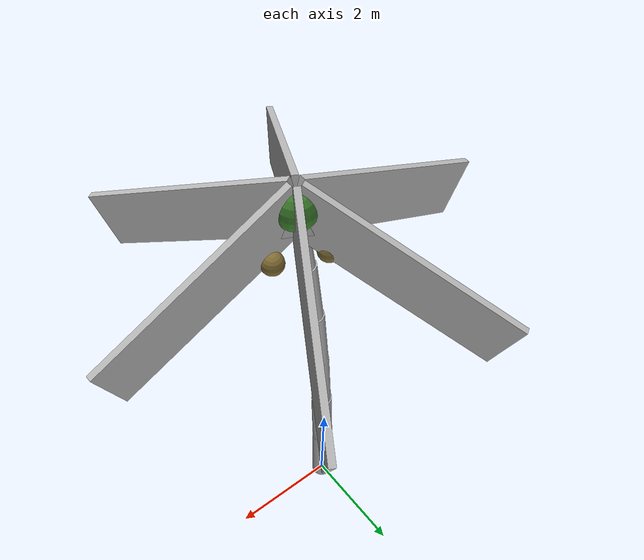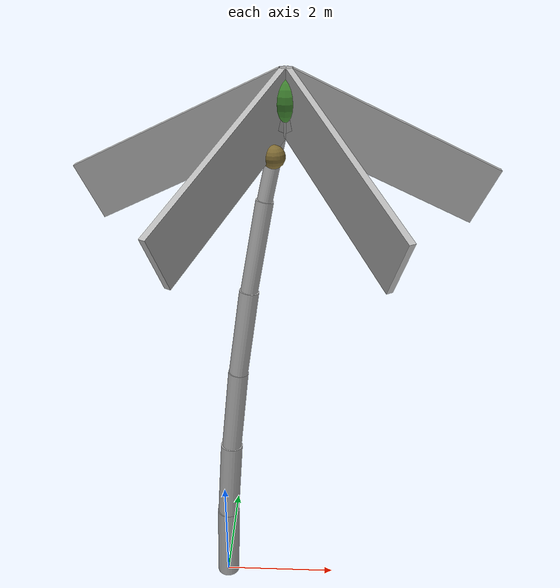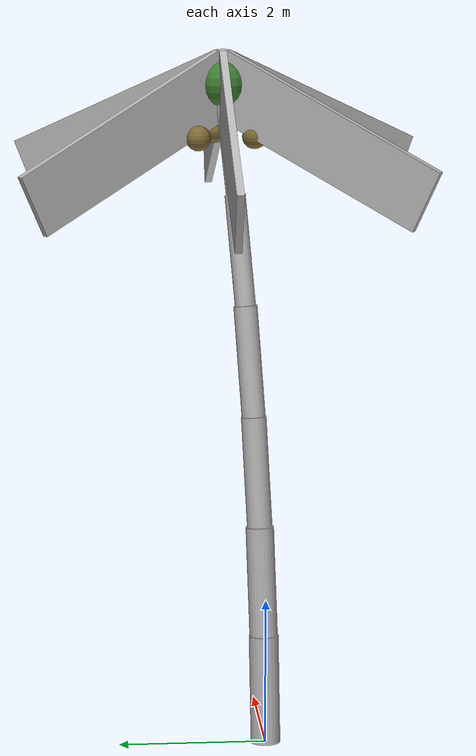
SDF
<?xml version="1.0" ?>
<sdf version="1.9">
  <model name="realistic_tree_coconut">
    <static>true</static>
    <link name="body">

      <!-- ================= BATANG melengkung, 6 segmen cylinder beruntun ================= -->
      <visual name="trunk_seg_1">
        <pose>0.026 0.012 0.749 0 0.038 0.436</pose>
        <geometry><cylinder><radius>0.20</radius><length>1.5</length></cylinder></geometry>
        <material><pbr><metal>
          <albedo_map>model://realistic_tree_coconut/materials/textures/bark_albedo.png</albedo_map>
          <normal_map>model://realistic_tree_coconut/materials/textures/bark_normal.png</normal_map>
          <roughness_map>model://realistic_tree_coconut/materials/textures/bark_roughness.png</roughness_map>
        </metal></pbr></material>
      </visual>
      <visual name="trunk_seg_2">
        <pose>0.104 0.049 2.247 0 0.077 0.436</pose>
        <geometry><cylinder><radius>0.19</radius><length>1.5</length></cylinder></geometry>
        <material><pbr><metal>
          <albedo_map>model://realistic_tree_coconut/materials/textures/bark_albedo.png</albedo_map>
          <normal_map>model://realistic_tree_coconut/materials/textures/bark_normal.png</normal_map>
        </metal></pbr></material>
      </visual>
      <visual name="trunk_seg_3">
        <pose>0.235 0.109 3.740 0 0.115 0.436</pose>
        <geometry><cylinder><radius>0.17</radius><length>1.5</length></cylinder></geometry>
        <material><pbr><metal>
          <albedo_map>model://realistic_tree_coconut/materials/textures/bark_albedo.png</albedo_map>
          <normal_map>model://realistic_tree_coconut/materials/textures/bark_normal.png</normal_map>
        </metal></pbr></material>
      </visual>
      <visual name="trunk_seg_4">
        <pose>0.417 0.194 5.226 0 0.154 0.436</pose>
        <geometry><cylinder><radius>0.16</radius><length>1.5</length></cylinder></geometry>
        <material><pbr><metal>
          <albedo_map>model://realistic_tree_coconut/materials/textures/bark_albedo.png</albedo_map>
          <normal_map>model://realistic_tree_coconut/materials/textures/bark_normal.png</normal_map>
        </metal></pbr></material>
      </visual>
      <visual name="trunk_seg_5">
        <pose>0.650 0.303 6.703 0 0.192 0.436</pose>
        <geometry><cylinder><radius>0.14</radius><length>1.5</length></cylinder></geometry>
        <material><pbr><metal>
          <albedo_map>model://realistic_tree_coconut/materials/textures/bark_albedo.png</albedo_map>
          <normal_map>model://realistic_tree_coconut/materials/textures/bark_normal.png</normal_map>
        </metal></pbr></material>
      </visual>
      <visual name="trunk_seg_6">
        <pose>0.935 0.436 8.170 0 0.230 0.436</pose>
        <geometry><cylinder><radius>0.12</radius><length>1.5</length></cylinder></geometry>
        <material><pbr><metal>
          <albedo_map>model://realistic_tree_coconut/materials/textures/bark_albedo.png</albedo_map>
          <normal_map>model://realistic_tree_coconut/materials/textures/bark_normal.png</normal_map>
        </metal></pbr></material>
      </visual>

      <!-- Pucuk batang -->
      <visual name="crown_bud">
        <pose>1.091 0.509 8.9 0 0 0</pose>
        <geometry><sphere><radius>0.32</radius></sphere></geometry>
        <material><ambient>0.20 0.42 0.16 1</ambient><diffuse>0.24 0.50 0.18 1</diffuse></material>
      </visual>

      <!-- ================= PELEPAH (fronds) — 6 buah menjuntai radial ================= -->
      <visual name="frond_1">
        <pose>2.541 0.509 8.223 0 2.007 0.000</pose>
        <geometry><box><size>0.9 0.10 3.4</size></box></geometry>
        <material><double_sided>true</double_sided><pbr><metal>
          <albedo_map>model://realistic_tree_coconut/materials/textures/leaf_albedo.png</albedo_map>
        </metal></pbr></material>
      </visual>
      <visual name="frond_2">
        <pose>1.816 1.764 8.223 0 2.007 1.047</pose>
        <geometry><box><size>0.9 0.10 3.4</size></box></geometry>
        <material><double_sided>true</double_sided><pbr><metal>
          <albedo_map>model://realistic_tree_coconut/materials/textures/leaf_albedo.png</albedo_map>
        </metal></pbr></material>
      </visual>
      <visual name="frond_3">
        <pose>0.365 1.764 8.223 0 2.007 2.094</pose>
        <geometry><box><size>0.9 0.10 3.4</size></box></geometry>
        <material><double_sided>true</double_sided><pbr><metal>
          <albedo_map>model://realistic_tree_coconut/materials/textures/leaf_albedo.png</albedo_map>
        </metal></pbr></material>
      </visual>
      <visual name="frond_4">
        <pose>-0.360 0.509 8.223 0 2.007 3.142</pose>
        <geometry><box><size>0.9 0.10 3.4</size></box></geometry>
        <material><double_sided>true</double_sided><pbr><metal>
          <albedo_map>model://realistic_tree_coconut/materials/textures/leaf_albedo.png</albedo_map>
        </metal></pbr></material>
      </visual>
      <visual name="frond_5">
        <pose>0.365 -0.747 8.223 0 2.007 4.189</pose>
        <geometry><box><size>0.9 0.10 3.4</size></box></geometry>
        <material><double_sided>true</double_sided><pbr><metal>
          <albedo_map>model://realistic_tree_coconut/materials/textures/leaf_albedo.png</albedo_map>
        </metal></pbr></material>
      </visual>
      <visual name="frond_6">
        <pose>1.816 -0.747 8.223 0 2.007 5.236</pose>
        <geometry><box><size>0.9 0.10 3.4</size></box></geometry>
        <material><double_sided>true</double_sided><pbr><metal>
          <albedo_map>model://realistic_tree_coconut/materials/textures/leaf_albedo.png</albedo_map>
        </metal></pbr></material>
      </visual>

      <!-- Tandan buah kelapa (detail kecil) -->
      <visual name="fruit_cluster_1">
        <pose>1.534 0.587 8.2 0 0 0</pose>
        <geometry><sphere><radius>0.17</radius></sphere></geometry>
        <material><ambient>0.42 0.36 0.18 1</ambient><diffuse>0.50 0.42 0.20 1</diffuse></material>
      </visual>
      <visual name="fruit_cluster_2">
        <pose>0.802 0.854 8.2 0 0 0</pose>
        <geometry><sphere><radius>0.17</radius></sphere></geometry>
        <material><ambient>0.42 0.36 0.18 1</ambient><diffuse>0.50 0.42 0.20 1</diffuse></material>
      </visual>
      <visual name="fruit_cluster_3">
        <pose>0.937 0.086 8.2 0 0 0</pose>
        <geometry><sphere><radius>0.17</radius></sphere></geometry>
        <material><ambient>0.42 0.36 0.18 1</ambient><diffuse>0.50 0.42 0.20 1</diffuse></material>
      </visual>

      <!-- ================= COLLISION disederhanakan =================
           1 cylinder besar membungkus seluruh lengkungan batang,
           1 ellipsoid untuk zona pelepah di pucuk. -->
      <collision name="trunk_collision">
        <pose>0.545 0.255 4.45 0 0 0</pose>
        <geometry><cylinder><radius>0.9</radius><length>8.9</length></cylinder></geometry>
      </collision>
      <collision name="crown_collision">
        <pose>1.091 0.509 8.3 0 0 0</pose>
        <geometry><ellipsoid><radii>3.3 3.3 1.6</radii></ellipsoid></geometry>
      </collision>

    </link>
  </model>
</sdf>
